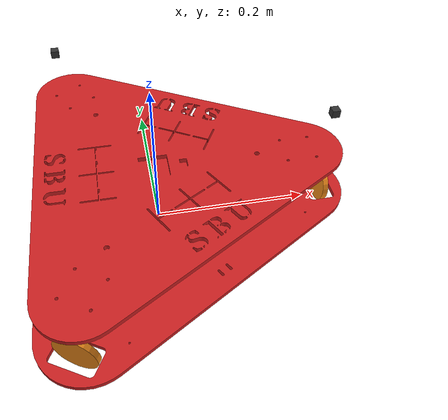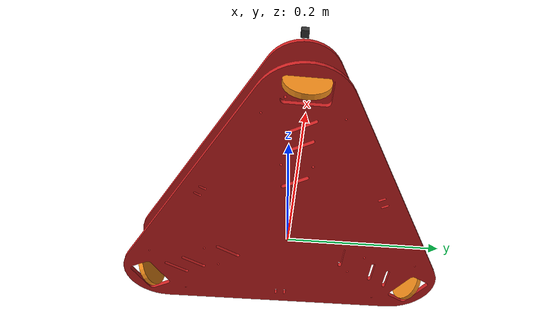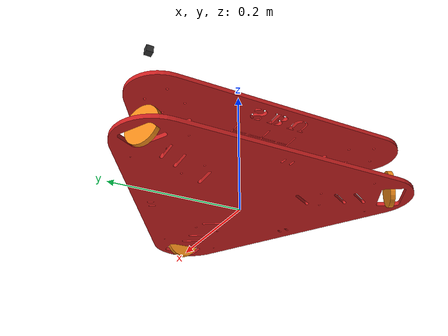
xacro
<?xml version="1.0"?>
<robot xmlns:xacro="http://www.ros.org/wiki/xacro" name="robot">

 <xacro:property name="M_PI" value="3.1415926535897931" />
 <xacro:property name="rob_scale" value="0.1"/>
 <xacro:property name="camera_z" value="${rob_scale*0.43}"/>
 <xacro:property name="base_z" value="${rob_scale*0.52}"/>

<xacro:property name="right_wheel_x" value="${rob_scale*2.195}"/>
<xacro:property name="right_wheel_y" value="${rob_scale*0}"/>
<xacro:property name="right_wheel_z" value="${rob_scale*0.27}"/>

<xacro:property name="right_wheel_length" value="${rob_scale*0.07}"/>
<xacro:property name="right_wheel_radius" value="${rob_scale*0.27}"/>
<xacro:property name="right_wheel_mass" value="${rob_scale*1}"/>

<xacro:property name="left_wheel_x" value="${rob_scale*-1.10000}"/>
<xacro:property name="left_wheel_y" value="${rob_scale*-1.9}"/>
<xacro:property name="left_wheel_z" value="${rob_scale*0.27}"/>

<xacro:property name="left_wheel_length" value="${rob_scale*0.07}"/>
<xacro:property name="left_wheel_radius" value="${rob_scale*0.27}"/>
<xacro:property name="left_wheel_mass" value="${rob_scale*1}"/>

<xacro:property name="left2_wheel_x" value="${rob_scale*-1.10000}"/>
<xacro:property name="left2_wheel_y" value="${rob_scale*1.9}"/>
<xacro:property name="left2_wheel_z" value="${rob_scale*0.27}"/>

<xacro:property name="left2_wheel_length" value="${rob_scale*0.07}"/>
<xacro:property name="left2_wheel_radius" value="${rob_scale*0.27}"/>
<xacro:property name="left2_wheel_mass" value="${rob_scale*1}"/>

<xacro:property name="sensor_size" value="${rob_scale*0.1}"/>

  <material name="black">
    <color rgba="0.0 0.0 0.0 1.0"/>
  </material>
  <material name="blue">
    <color rgba="0.203125 0.23828125 0.28515625 1.0"/>
  </material>
  <material name="green">
    <color rgba="0.0 0.8 0.0 1.0"/>
  </material>
  <material name="grey">
    <color rgba="0.2 0.2 0.2 1.0"/>
  </material>
  <material name="orange">
    <color rgba="1.0 0.423529411765 0.0392156862745 1.0"/>
  </material>
  <material name="brown">
    <color rgba="0.870588235294 0.811764705882 0.764705882353 1.0"/>
  </material>
  <material name="red">
    <color rgba="0.80078125 0.12890625 0.1328125 1.0"/>
  </material>
  <material name="white">
    <color rgba="1.0 1.0 1.0 1.0"/>
  </material>

    <gazebo reference="link_chassis">
    <material>Gazebo/Orange</material>
  </gazebo>
  <gazebo reference="link_left_wheel">
    <material>Gazebo/Orange</material>
  </gazebo>
  <gazebo reference="link_right_wheel">
    <material>Gazebo/Orange</material>
  </gazebo>
  <gazebo reference="link_left2_wheel">
    <material>Gazebo/Orange</material>
  </gazebo>
  <gazebo reference="camera_link">
    <material>Gazebo/Blue</material>
  </gazebo>
    <gazebo reference="sonar_link">
    <material>Gazebo/Black</material>
  </gazebo>

  <gazebo>
  <plugin name="gazebo_ros_control" filename="libgazebo_ros_control.so">
  <robotNamespace>/robot</robotNamespace>
  </plugin>
</gazebo>

  <gazebo>
    <plugin filename="libgazebo_ros_diff_drive.so" name="differential_drive_controller">
      <alwaysOn>true</alwaysOn>
      <updateRate>20</updateRate>
      <leftJoint>joint_left_wheel</leftJoint>
      <rightJoint>joint_right_wheel</rightJoint>
      <wheelSeparation>0.4</wheelSeparation>
      <wheelDiameter>0.2</wheelDiameter>
      <torque>0.1</torque>
      <commandTopic>cmd_vel</commandTopic>
      <odometryTopic>odom</odometryTopic>
      <odometryFrame>odom</odometryFrame>
      <robotBaseFrame>link_chassis</robotBaseFrame>
    </plugin>
  </gazebo>

  <gazebo reference="sensor_laser">
    <sensor type="ray" name="head_hokuyo_sensor">
      <pose>0 0 0 0 0 0</pose>
      <visualize>false</visualize>
      <update_rate>20</update_rate>
      <ray>
        <scan>
          <horizontal>
            <samples>720</samples>
            <resolution>1</resolution>
            <min_angle>-1.570796</min_angle>
            <max_angle>1.570796</max_angle>
          </horizontal>
        </scan>
        <range>
          <min>0.10</min>
          <max>10.0</max>
          <resolution>0.01</resolution>
        </range>
        <noise>
          <type>gaussian</type>
          <mean>0.0</mean>
          <stddev>0.01</stddev>
        </noise>
      </ray>
      <plugin name="gazebo_ros_head_hokuyo_controller" filename="libgazebo_ros_laser.so">
        <topicName>/m2wr/laser/scan</topicName>
        <frameName>sensor_laser</frameName>
      </plugin>
    </sensor>
  </gazebo>

   <!--Interial macros-->
  <xacro:macro name="cylinder_inertia" params="m r h">
    <inertial>
      <mass value="${m}"/>
      <inertia ixx="${m*(3*r*r+h*h)/12}" ixy = "0" ixz = "0" iyy="${m*(3*r*r+h*h)/12}" iyz = "0" izz="${m*r*r/2}"/>
    </inertial>
  </xacro:macro>

  <xacro:macro name="box_inertia" params="m w h d">
    <inertial>
      <mass value="${m}"/>
      <inertia ixx="${m / 12.0 * (d*d + h*h)}" ixy="0.0" ixz="0.0" iyy="${m / 12.0 * (w*w + h*h)}" iyz="0.0" izz="${m / 12.0 * (w*w + d*d)}"/>
    </inertial>
  </xacro:macro>

  <xacro:macro name="camera_link" params="parent">

    <link name="camera_link">

      <collision>
        <origin xyz="0 0 ${camera_z}" rpy="0 0 0" />
        <geometry>
          <box size="${sensor_size} ${sensor_size} ${sensor_size}" />

        </geometry>
      </collision>

      <visual>
        <origin xyz="0 0 ${camera_z}" rpy="0 0 0" />
        <geometry>
          <box size="${sensor_size} ${sensor_size} ${sensor_size}" />
        </geometry>
        <material name="grey">
            <color rgba="0.2 0.2 0.2 1.0"/>
        </material>
      </visual>

	<xacro:box_inertia m="0.001" w="${sensor_size}" h="${sensor_size}" d="${sensor_size}"/>

    </link>

    <joint name="camera_joint" type="fixed">
        <parent link="${parent}"/>
        <child link="camera_link"/>
        <origin rpy="0 0 0" xyz="${right_wheel_x} 0 ${rob_scale}"/>
        <axis xyz="1 0 0" />
    </joint>

    <gazebo reference="camera_link">
      <sensor type="camera" name="camera_camera_sensor">
        <update_rate>30.0</update_rate>
        <camera>
          <pose>0.035 0 0.078 0 0 0</pose>
          <horizontal_fov>${85 * M_PI/180.0}</horizontal_fov>
          <image>
            <format>R8G8B8</format>
            <width>1020</width>
            <height>1020</height>
          </image>
          <clip>
            <near>0.01</near>
            <far>100</far>
          </clip>
        </camera>

        <plugin name="camera_camera_controller" filename="libgazebo_ros_camera.so">
          <alwaysOn>true</alwaysOn>
          <updateRate>0.0</updateRate>
          <cameraName>robot_sensor/camera</cameraName>
          <imageTopicName>image_raw</imageTopicName>
          <cameraInfoTopicName>camera_info</cameraInfoTopicName>
          <frameName>camera_link</frameName>
          <hackBaseline>0.07</hackBaseline>
          <distortionK1>0.0</distortionK1>
          <distortionK2>0.0</distortionK2>
          <distortionK3>0.0</distortionK3>
          <distortionT1>0.0</distortionT1>
          <distortionT2>0.0</distortionT2>
        </plugin>
      </sensor>
    </gazebo>
  </xacro:macro>

  <xacro:macro name="sonar_link" params="parent">

   <link name="sonar_link">

      <collision>
        <origin xyz="0 0 ${camera_z}" rpy="0 0 0" />
        <geometry>
          <box size="${sensor_size} ${sensor_size} ${sensor_size}" />

        </geometry>
      </collision>

      <visual>
        <origin xyz="0 0 ${camera_z}" rpy="0 0 0" />
        <geometry>
          <box size="${sensor_size} ${sensor_size} ${sensor_size}" />
        </geometry>
        <material name="grey">
            <color rgba="0.2 0.2 0.2 1.0"/>
        </material>
      </visual>

	<xacro:box_inertia m="0.001" w="${sensor_size}" h="${sensor_size}" d="${sensor_size}"/>

  </link>

     <joint name="sonar_joint" type="fixed">
        <parent link="${parent}"/>
        <child link="sonar_link"/>
        <origin rpy="0 0 0" xyz="${left2_wheel_x} ${left2_wheel_y} ${rob_scale}"/>
        <axis xyz="1 0 0" />
    </joint>

      <gazebo reference="sonar_link">
	    <sensor type="ray" name="sonar">
	  <pose>0.25 0 0 0 0 0</pose>
	  <update_rate>5</update_rate>
	  <ray>
	    <scan>
	      <horizontal>
		<samples>5</samples>
		<resolution>1.0</resolution>
		<min_angle>-0.25</min_angle>
		<max_angle>0.25</max_angle>
	      </horizontal>
	      <vertical>
		<samples>5</samples>
		<resolution>1</resolution>
		<min_angle>-0.25</min_angle>
		<max_angle>0.25</max_angle>
	      </vertical>
	    </scan>
	    <range>
	      <min>0.01</min>
	      <max>0.75</max>
	      <resolution>0.01</resolution>
	    </range>
	  </ray>
	  <plugin filename="libgazebo_ros_range.so" name="gazebo_ros_range">
	    <gaussianNoise>0.005</gaussianNoise>
	    <alwaysOn>true</alwaysOn>
	    <updateRate>5</updateRate>
	    <topicName>sonar</topicName>
	    <frameName>sonar_link</frameName>
	    <fov>0.5</fov>
	    <radiation>ultrasound</radiation>
	  </plugin>
	</sensor>
    </gazebo>

  </xacro:macro>

<link name="base_link">
    <inertial>
      <mass value="20"/>
      <origin xyz="0 0 ${base_z}" rpy="0 0 3.14"/>
      <inertia ixx="0.000014" ixy="0" ixz="0" iyy="0.000014" iyz="-0.000000" izz="0.000025"/>
    </inertial>
	<visual>
	<origin xyz="0 0 ${base_z}" rpy="0 0 3.14"/>
	<geometry>
        <mesh filename="package://rob_pkg/meshes/two_plate.dae" scale="${rob_scale} ${rob_scale} ${rob_scale}"  />
      </geometry>
      <material name="red"/>
    </visual>
    <collision >
	<origin xyz="0 0 ${base_z}" rpy="0 0 3.14"/>
      <geometry>
        <mesh filename="package://rob_pkg/meshes/two_plate.dae" scale="${rob_scale} ${rob_scale} ${rob_scale}"  />
      </geometry>
    </collision>

  </link>

  <xacro:camera_link parent="base_link" />

  <xacro:sonar_link parent="base_link" />

    <link name="link_right_wheel">
      <mass value="${right_wheel_mass}"/>
      <origin rpy="0 ${M_PI/2} 0" xyz="${right_wheel_x} ${right_wheel_y} ${right_wheel_z}"/>
    <collision name="link_right_wheel_collision">
	<geometry>
	 <cylinder length="${right_wheel_length}" radius="${right_wheel_radius}" />
	</geometry>
    </collision>
    <visual name="link_right_wheel_visual">
	<geometry>
	 <cylinder length="${right_wheel_length}" radius="${right_wheel_radius}" />
	</geometry>
    </visual>
    <xacro:cylinder_inertia m="${right_wheel_mass}" r="${right_wheel_radius}" h="${right_wheel_length}"/>
  </link>

  <joint name="joint_right_wheel" type="continuous">
	<origin rpy="0 ${M_PI/2} 0" xyz="${right_wheel_x} 0 ${right_wheel_z}"/>
    <child link="link_right_wheel"/>
    <parent link="base_link"/>
    <axis rpy="0 0 0" xyz="0 0 1"/>
  </joint>

<!-- Rear wheels transmission -->
<transmission name="transmission_right_wheel">
    <type>transmission_interface/SimpleTransmission</type>
    <joint name="joint_right_wheel">
        <hardwareInterface>hardware_interface/EffortJointInterface</hardwareInterface>
    </joint>
    <actuator name="motor_right_wheel">
        <hardwareInterface>hardware_interface/EffortJointInterface</hardwareInterface>
        <mechanicalReduction>1</mechanicalReduction>
    </actuator>
</transmission>

    <link name="link_left_wheel">
      <mass value="${left_wheel_mass}"/>
      <origin rpy="0 ${M_PI/2} 1.0472" xyz="${left_wheel_x} ${left_wheel_y} ${left_wheel_z}"/>
    <collision name="link_left_wheel_collision">
	<geometry>
	 <cylinder length="${left_wheel_length}" radius="${left_wheel_radius}" />
	</geometry>
    </collision>
    <visual name="link_left_wheel_visual">
	<geometry>
	 <cylinder length="${left_wheel_length}" radius="${left_wheel_radius}" />
	</geometry>
    </visual>
    <xacro:cylinder_inertia m="${left_wheel_mass}" r="${left_wheel_radius}" h="${left_wheel_length}"/>
  </link>

  <joint name="joint_left_wheel" type="continuous">
  <origin rpy="0 ${M_PI/2} 1.0472" xyz="${left_wheel_x} ${left_wheel_y} ${left_wheel_z}"/>
    <child link="link_left_wheel"/>
    <parent link="base_link"/>
    <axis rpy="0 0 0" xyz="0 0 1"/>
  </joint>

<!-- Rear wheels transmission -->
<transmission name="transmission_left_wheel">
    <type>transmission_interface/SimpleTransmission</type>
    <joint name="joint_left_wheel">
        <hardwareInterface>hardware_interface/EffortJointInterface</hardwareInterface>
    </joint>
    <actuator name="motor_left_wheel">
        <hardwareInterface>hardware_interface/EffortJointInterface</hardwareInterface>
        <mechanicalReduction>1</mechanicalReduction>
    </actuator>
</transmission>

    <link name="link_left2_wheel">
      <mass value="${left2_wheel_mass}"/>
      <origin rpy="0 ${M_PI/2} 2.0944" xyz="${left2_wheel_x} ${left2_wheel_y} ${left2_wheel_z}"/>
    <collision name="link_left2_wheel_collision">
	<geometry>
	 <cylinder length="${left2_wheel_length}" radius="${left2_wheel_radius}" />
	</geometry>
    </collision>
    <visual name="link_left2_wheel_visual">
	<geometry>
	 <cylinder length="${left2_wheel_length}" radius="${left2_wheel_radius}" />
	</geometry>
    </visual>
    <xacro:cylinder_inertia m="${left2_wheel_mass}" r="${left2_wheel_radius}" h="${left2_wheel_length}"/>
  </link>

  <joint name="joint_left2_wheel" type="continuous">
  <origin rpy="0 ${M_PI/2} 2.0944" xyz="${left2_wheel_x} ${left2_wheel_y} ${left2_wheel_z}"/>
    <child link="link_left2_wheel"/>
    <parent link="base_link"/>
    <axis rpy="0 0 0" xyz="0 0 1"/>
  </joint>

<!-- Rear wheels transmission -->
<transmission name="transmission_left2_wheel">
    <type>transmission_interface/SimpleTransmission</type>
    <joint name="joint_left2_wheel">
        <hardwareInterface>hardware_interface/EffortJointInterface</hardwareInterface>
    </joint>
    <actuator name="motor_left2_wheel">
        <hardwareInterface>hardware_interface/EffortJointInterface</hardwareInterface>
        <mechanicalReduction>1</mechanicalReduction>
    </actuator>
</transmission>

</robot>
